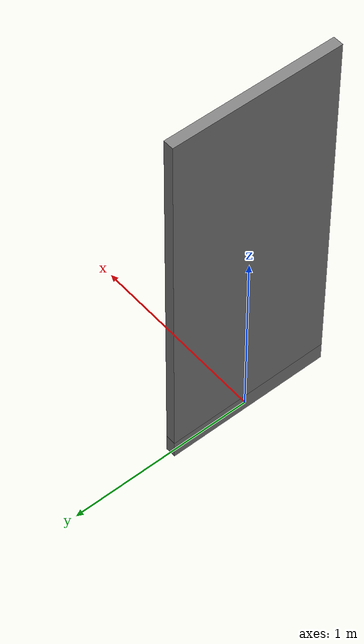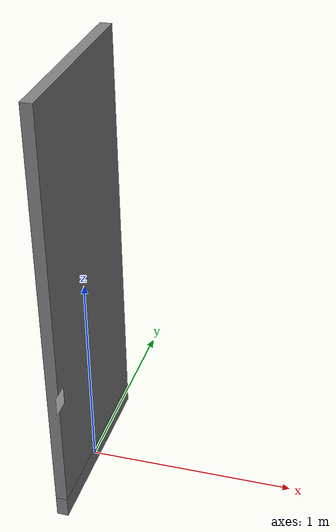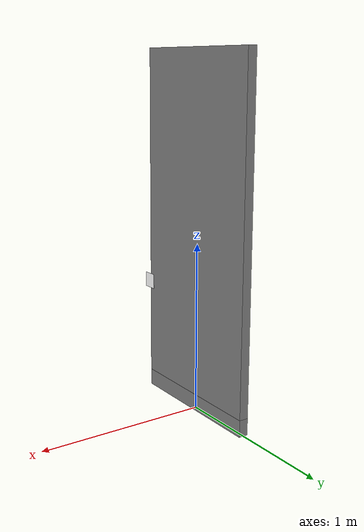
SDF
<?xml version="1.0" ?>
<sdf version="1.4">
    <model name='full_wall_55_900_2090_with_marker'>
      <link name='link'>
        <inertial>
          <mass>50</mass>
          <inertia>
            <ixx>1</ixx>
            <ixy>0</ixy>
            <ixz>0</ixz>
            <iyy>1</iyy>
            <iyz>0</iyz>
            <izz>1</izz>
          </inertia>
        </inertial>
        <visual name='bottom_frame'>
          <pose>0 0 0.05 0 0 0</pose>
          <geometry>
            <box>
              <size>0.055 0.9 0.1</size>
            </box>
          </geometry>
          <material>
            <!-- hsr_color/white -->
            <name>white</name>
            <ambient>1 1 1 1</ambient>
            <diffuse>0.5 0.5 0.5 1</diffuse>
            <specular>0 0 0 1</specular>
            <emissive>0 0 0 1</emissive>
            <shading>gouraud</shading>
            <receive_shadows>on</receive_shadows>
          </material>
        </visual>
        <collision name='collision_bottom_frame'>
          <pose>0 0 0.05 0 0 0</pose>
          <geometry>
            <box>
              <size>0.055 0.9 0.1</size>
            </box>
          </geometry>
          <max_contacts>10</max_contacts>
          <surface>
            <bounce/>
            <friction>
              <ode/>
            </friction>
            <contact>
              <ode/>
            </contact>
          </surface>
        </collision>
        <visual name='wall'>
          <pose>0 0 1.095 0 0 0</pose>
          <geometry>
            <box>
              <size>0.055 0.9 1.99</size>
            </box>
          </geometry>
          <material>
            <!-- wall/white_noise -->
            <name>white_noise</name>
            <ambient>1 1 1 1</ambient>
            <diffuse>0.5 0.5 0.5 1.0</diffuse>
            <specular>0 0 0 1.0</specular>
            <shininess>12.5</shininess>
            <pbr>
              <metal>
                <albedo_map>model://base_materials/wall/textures/wall_white_noise.png</albedo_map>
                <max_anisotropy>16</max_anisotropy>
                <metalness>0</metalness>
              </metal>
            </pbr>
          </material>
        </visual>
        <visual name='marker_0013'>
          <pose>0.035 -0.45 0.69 0 1.5708 3.1415</pose>
          <geometry>
            <box>
              <size>0.09 0.09 0.0001</size>
            </box>
          </geometry>

        <material>
          <name>Marker/0013</name>

          <ambient>1 1 1 1</ambient>  <!-- 周囲光 (真っ白) -->
          <diffuse>1 1 1 1</diffuse>  <!-- 反射光 (真っ白) -->
          <specular>0 0 0 1</specular>  <!-- 鏡面反射 (無し) -->
          <emissive>0 0 0 0</emissive>  <!-- 発光 (無し) -->

          <pbr>
            <metal>
              <albedo_map>model://marker/0013/textures/BchThin_Id0013_Size70.png</albedo_map>
              <max_anisotropy>16</max_anisotropy>
              <metalness>0.0</metalness> <!-- 金属感を排除 -->
            </metal>
          </pbr>
        </material>
        </visual>
        <collision name='collision_wall'>
          <pose>0 0 1.095 0 0 0</pose>
          <geometry>
            <box>
              <size>0.055 0.9 1.99</size>
            </box>
          </geometry>
          <max_contacts>10</max_contacts>
          <surface>
            <bounce/>
            <friction>
              <ode/>
            </friction>
            <contact>
              <ode/>
            </contact>
          </surface>
        </collision>
        <velocity_decay>
          <linear>0</linear>
          <angular>0</angular>
        </velocity_decay>
        <self_collide>0</self_collide>
        <kinematic>0</kinematic>
        <gravity>1</gravity>
      </link>
      <static>1</static>
    </model>
</sdf>
